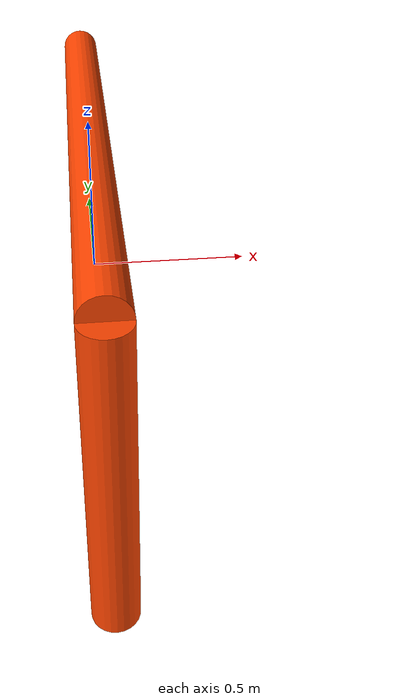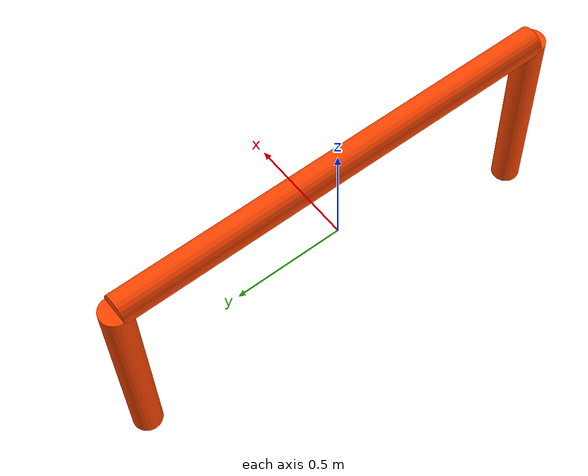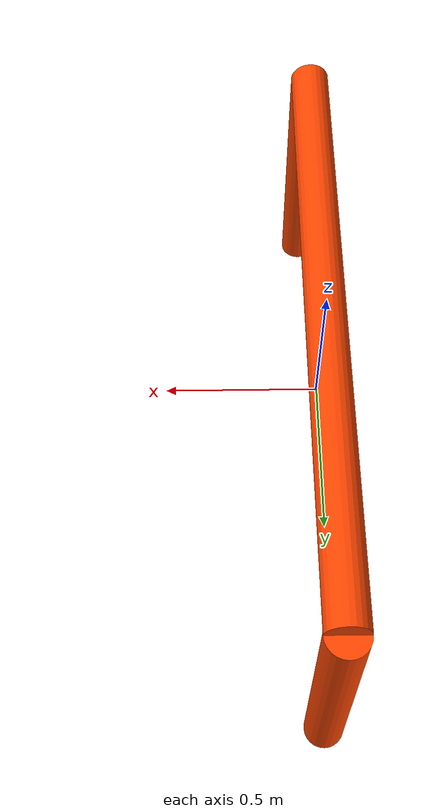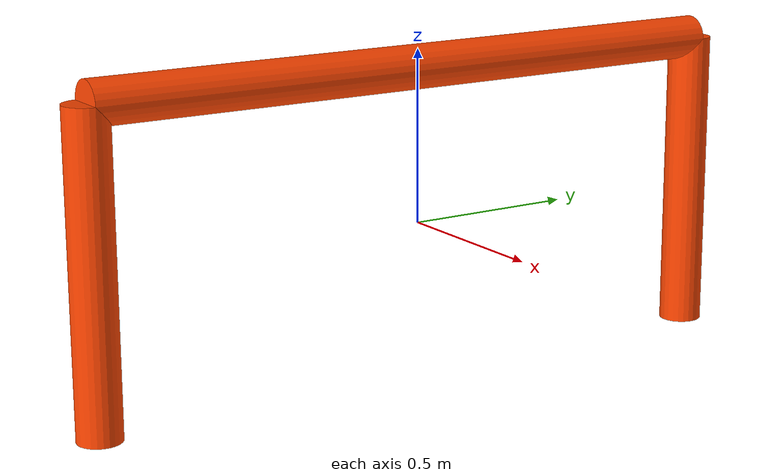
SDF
<?xml version='1.0'?>
<sdf version='1.6'>
    <model name='qual_gate'>
        <pose>0 0 0 0 0 0</pose>
        <link name="left">
            <pose>0 1 0 0 0 0</pose>
            <visual name="visual">
                <geometry>
                    <cylinder>
                        <radius>0.0635</radius>
                        <length>0.9</length>
                    </cylinder>
                </geometry>
                <material>
                    <ambient>0.3 0.3 0.3 1</ambient>
                    <diffuse>1 0.27 0 1</diffuse>
                    <specular>0.01 0.01 0.01 1</specular>
                    <emissive>0 0 0 1</emissive>
                </material>
            </visual>
        </link>
	<link name="right">
            <pose>0 -1 0 0 0 0</pose>
            <visual name="visual">
                <geometry>
                    <cylinder>
                        <radius>0.0635</radius>
                        <length>0.9</length>
                    </cylinder>
                </geometry>
                <material>
                    <ambient>0.3 0.3 0.3 1</ambient>
                    <diffuse>1 0.27 0 1</diffuse>
                    <specular>0.01 0.01 0.01 1</specular>
                    <emissive>0 0 0 1</emissive>
                </material>
            </visual>
        </link>
	<link name="middle">
            <pose>0 0 .45 1.5708 0 0</pose>
            <visual name="visual">
                <geometry>
                    <cylinder>
                        <radius>0.0635</radius>
                        <length>2</length>
                    </cylinder>
                </geometry>
                <material>
                    <ambient>0.3 0.3 0.3 1</ambient>
                    <diffuse>1 0.27 0 1</diffuse>
                    <specular>0.01 0.01 0.01 1</specular>
                    <emissive>0 0 0 1</emissive>
                </material>
            </visual>
        </link>

        <static>1</static>
    </model>
</sdf>
